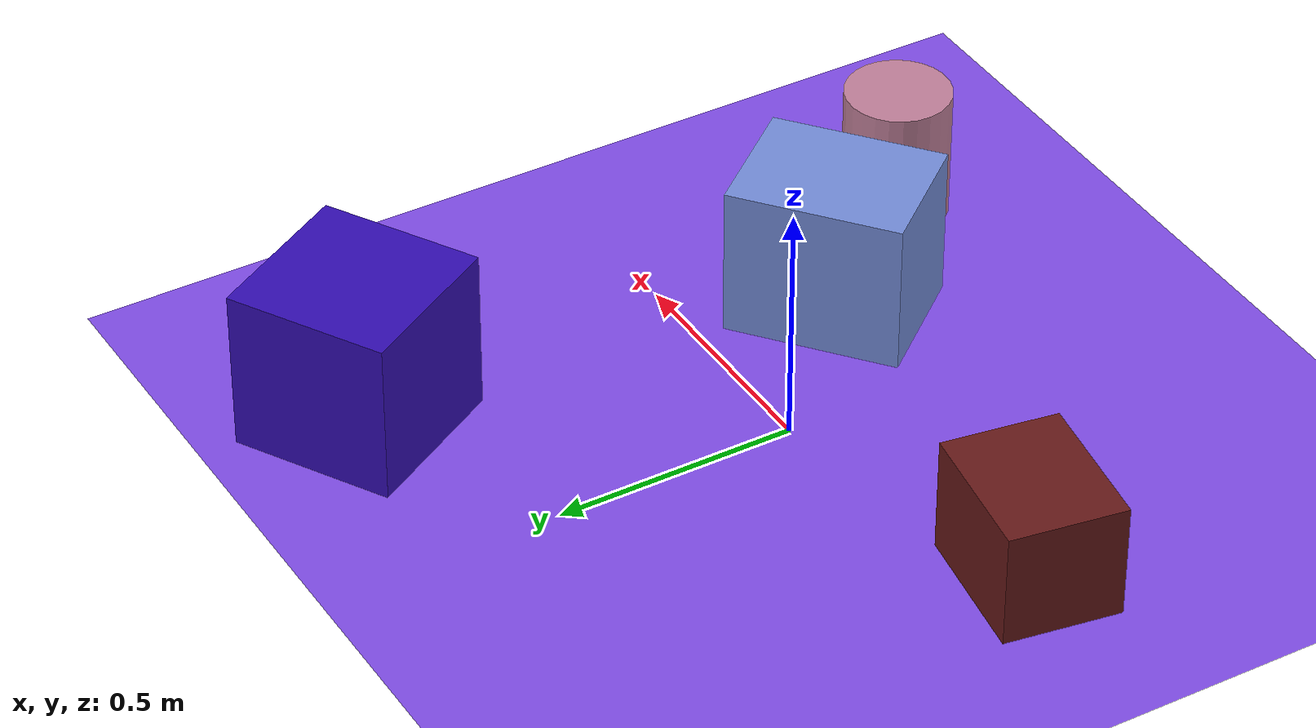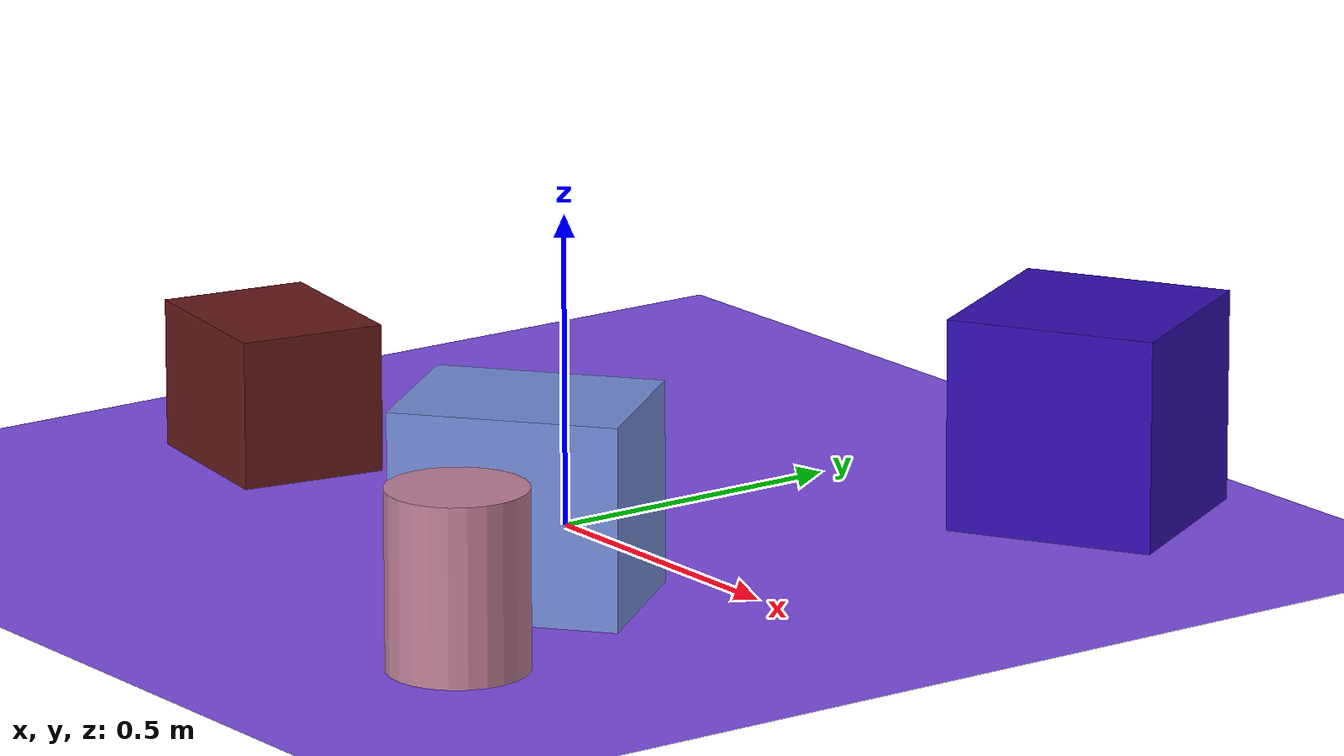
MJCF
<mujoco>
   <asset>
<texture type="skybox" builtin="gradient" rgb1="0.8 0.2 0.5" rgb2="0.8 0.8 0.4" width="256" height="256"/>
<texture name="checker_0" builtin="checker" rgb1="0.5 0.4 0.2" rgb2="1.0 0.6 1.0" width="200" height="200"/>
<texture name="flat_1" builtin="flat" rgb1="0.4 0.1 0.1" rgb2="0.4 0.1 0.1"  width="200" height="200"/>
<texture name="gradient_2" builtin="gradient" rgb1="0.4 1.0 0.8" rgb2="0.5 0.1 0.9" width="200" height="200"/>
<texture name="gradient_3" builtin="gradient" rgb1="0.2 0.0 0.5" rgb2="0.2 0.1 0.9" width="200" height="200"/><material name="checker_0_mat" reflectance="0" texrepeat="6 6" texture="checker_0" texuniform="false" />
<material name="flat_1_mat" reflectance="0" texture="flat_1" texuniform="true"/>
<material name="gradient_2_mat" reflectance="0" texture="gradient_2" texuniform="true"/>
<material name="gradient_3_mat" reflectance="0" texture="gradient_3" texuniform="true"/>
   </asset>

   <worldbody>
      <light diffuse=".9 .9 .9" pos="0 0 3" dir="0 0 -1"/>
     <geom type="plane" size="1 1 0.1" rgba="0.5 0.3 0.9 1"/>
<geom type="cylinder" pos="0.52 -0.57 0.14" size="0.11 0.14 0.14" material="checker_0_mat" euler="0 0 18" />
<geom type="box" pos="-0.59 -0.15 0.12" size="0.12 0.15 0.12" material="flat_1_mat" euler="0 0 81" />
<geom type="box" pos="0.29 -0.28 0.16" size="0.18 0.14 0.16" material="gradient_2_mat" euler="0 0 39" />
<geom type="box" pos="0.44 0.69 0.17" size="0.17 0.17 0.17" material="gradient_3_mat" euler="0 0 30" /><camera euler="60 0 180" fovy="60" name="camera1" pos="-0.2 -1.5 1"></camera>   </worldbody>
</mujoco>
